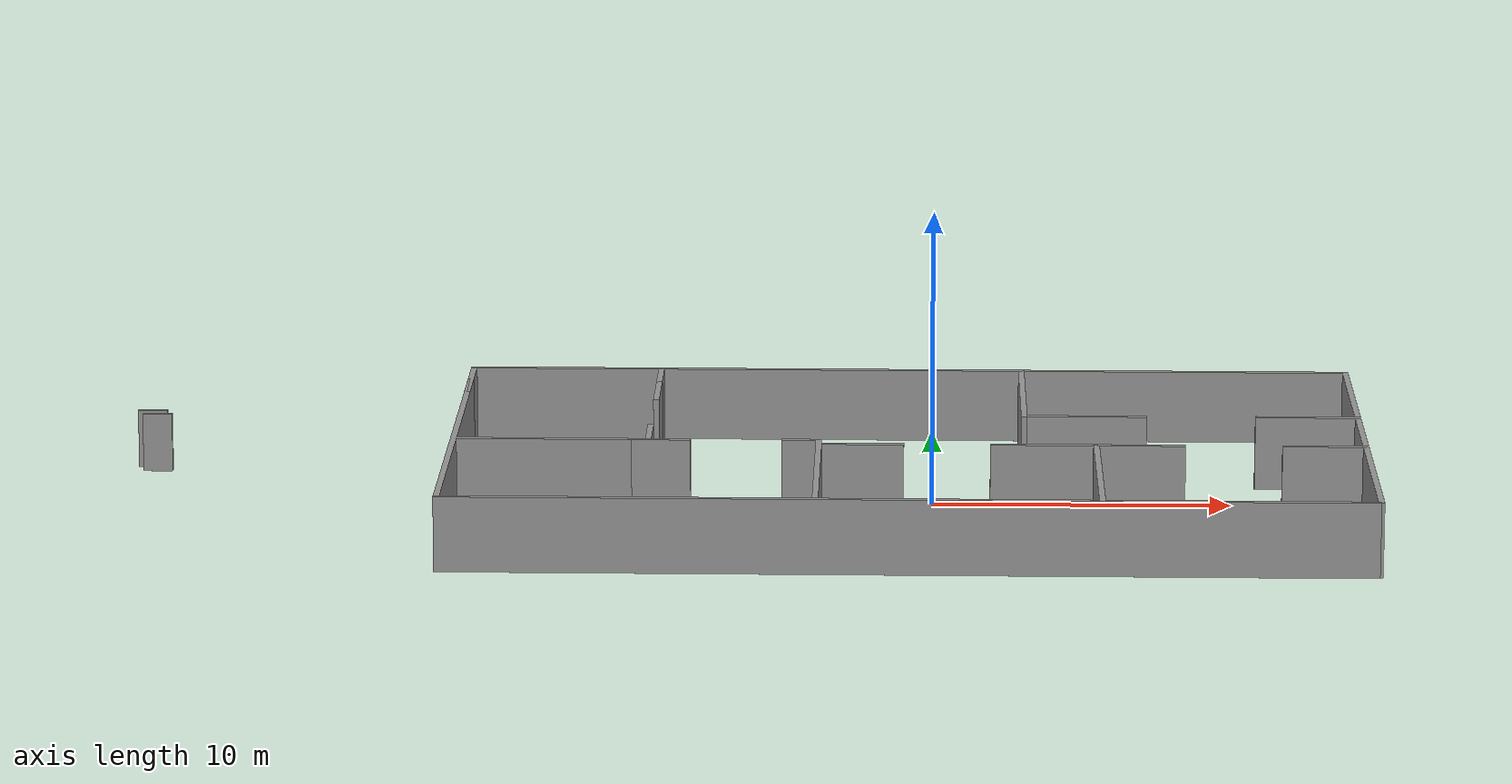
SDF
<?xml version='1.0'?>
<sdf version='1.4'>
  <model name='objectSearchBuilding'>
    <link name='Door_0'>
      <collision name='Door_0_Collision'>
        <geometry>
          <box>
            <size>1 0.2 2</size>
          </box>
        </geometry>
        <pose>0 0 1 0 -0 0</pose>
      </collision>
      <visual name='Door_0_Visual'>
        <pose>0 0 1 0 -0 0</pose>
        <geometry>
          <box>
            <size>1 0.2 2</size>
          </box>
        </geometry>
        <material>
          <script>
            <uri>file://media/materials/scripts/gazebo.material</uri>
            <name>Gazebo/Grey</name>
          </script>
        </material>
      </visual>
      <velocity_decay>
        <linear>0</linear>
        <angular>0</angular>
      </velocity_decay>
      <pose>-26.7171 4.37705 0 0 -0 0</pose>
    </link>
    <link name='Door_1'>
      <collision name='Door_1_Collision'>
        <geometry>
          <box>
            <size>1 0.2 2</size>
          </box>
        </geometry>
        <pose>0 0 1 0 -0 0</pose>
      </collision>
      <visual name='Door_1_Visual'>
        <pose>0 0 1 0 -0 0</pose>
        <geometry>
          <box>
            <size>1 0.2 2</size>
          </box>
        </geometry>
        <material>
          <script>
            <uri>file://media/materials/scripts/gazebo.material</uri>
            <name>Gazebo/Grey</name>
          </script>
        </material>
      </visual>
      <velocity_decay>
        <linear>0</linear>
        <angular>0</angular>
      </velocity_decay>
      <pose>-26.506 3.88454 0 0 -0 0</pose>
    </link>
    <link name='Wall_1'>
      <collision name='Wall_1_Collision'>
        <geometry>
          <box>
            <size>16.1369 0.2 2.5</size>
          </box>
        </geometry>
        <pose>0 0 1.25 0 -0 0</pose>
      </collision>
      <visual name='Wall_1_Visual'>
        <pose>0 0 1.25 0 -0 0</pose>
        <geometry>
          <box>
            <size>16.1369 0.2 2.5</size>
          </box>
        </geometry>
        <material>
          <script>
            <uri>file://media/materials/scripts/gazebo.material</uri>
            <name>Gazebo/Grey</name>
          </script>
        </material>
      </visual>
      <velocity_decay>
        <linear>0</linear>
        <angular>0</angular>
      </velocity_decay>
      <pose>-15.9816 -0.892347 0 0 0 -1.5708</pose>
    </link>
    <link name='Wall_13'>
      <collision name='Wall_13_Collision'>
        <geometry>
          <box>
            <size>2.10141 0.2 2.5</size>
          </box>
        </geometry>
        <pose>0 0 1.25 0 -0 0</pose>
      </collision>
      <visual name='Wall_13_Visual'>
        <pose>0 0 1.25 0 -0 0</pose>
        <geometry>
          <box>
            <size>2.10141 0.2 2.5</size>
          </box>
        </geometry>
        <material>
          <script>
            <uri>file://media/materials/scripts/gazebo.material</uri>
            <name>Gazebo/Grey</name>
          </script>
        </material>
      </visual>
      <velocity_decay>
        <linear>0</linear>
        <angular>0</angular>
      </velocity_decay>
      <pose>-9.48149 -0.238173 0 0 0 -1.5708</pose>
    </link>
    <link name='Wall_14'>
      <collision name='Wall_14_Collision'>
        <geometry>
          <box>
            <size>6.59198 0.2 2.5</size>
          </box>
        </geometry>
        <pose>0 0 1.25 0 -0 0</pose>
      </collision>
      <visual name='Wall_14_Visual'>
        <pose>0 0 1.25 0 -0 0</pose>
        <geometry>
          <box>
            <size>6.59198 0.2 2.5</size>
          </box>
        </geometry>
        <material>
          <script>
            <uri>file://media/materials/scripts/gazebo.material</uri>
            <name>Gazebo/Grey</name>
          </script>
        </material>
      </visual>
      <velocity_decay>
        <linear>0</linear>
        <angular>0</angular>
      </velocity_decay>
      <pose>-12.6775 -1.18888 0 0 -0 3.14159</pose>
    </link>
    <link name='Wall_2'>
      <collision name='Wall_2_Collision'>
        <geometry>
          <box>
            <size>30.4445 0.2 2.5</size>
          </box>
        </geometry>
        <pose>0 0 1.25 0 -0 0</pose>
      </collision>
      <visual name='Wall_2_Visual'>
        <pose>0 0 1.25 0 -0 0</pose>
        <geometry>
          <box>
            <size>30.4445 0.2 2.5</size>
          </box>
        </geometry>
        <material>
          <script>
            <uri>file://media/materials/scripts/gazebo.material</uri>
            <name>Gazebo/Grey</name>
          </script>
        </material>
      </visual>
      <velocity_decay>
        <linear>0</linear>
        <angular>0</angular>
      </velocity_decay>
      <pose>-0.859603 -8.86031 0 0 -0 3.3e-05</pose>
    </link>
    <link name='Wall_22'>
      <collision name='Wall_22_Collision'>
        <geometry>
          <box>
            <size>1.97014 0.2 2.5</size>
          </box>
        </geometry>
        <pose>0 0 1.25 0 -0 0</pose>
      </collision>
      <visual name='Wall_22_Visual'>
        <pose>0 0 1.25 0 -0 0</pose>
        <geometry>
          <box>
            <size>1.97014 0.2 2.5</size>
          </box>
        </geometry>
        <material>
          <script>
            <uri>file://media/materials/scripts/gazebo.material</uri>
            <name>Gazebo/Grey</name>
          </script>
        </material>
      </visual>
      <velocity_decay>
        <linear>0</linear>
        <angular>0</angular>
      </velocity_decay>
      <pose>-9.05251 -1.19759 0 0 -0 0</pose>
    </link>
    <link name='Wall_24'>
      <collision name='Wall_24_Collision'>
        <geometry>
          <box>
            <size>1.33184 0.2 2.5</size>
          </box>
        </geometry>
        <pose>0 0 1.25 0 -0 0</pose>
      </collision>
      <visual name='Wall_24_Visual'>
        <pose>0 0 1.25 0 -0 0</pose>
        <geometry>
          <box>
            <size>1.33184 0.2 2.5</size>
          </box>
        </geometry>
        <material>
          <script>
            <uri>file://media/materials/scripts/gazebo.material</uri>
            <name>Gazebo/Grey</name>
          </script>
        </material>
      </visual>
      <velocity_decay>
        <linear>0</linear>
        <angular>0</angular>
      </velocity_decay>
      <pose>-4.35895 -1.14656 0 0 -0 0</pose>
    </link>
    <link name='Wall_25'>
      <collision name='Wall_25_Collision'>
        <geometry>
          <box>
            <size>7.88323 0.2 2.5</size>
          </box>
        </geometry>
        <pose>0 0 1.25 0 -0 0</pose>
      </collision>
      <visual name='Wall_25_Visual'>
        <pose>0 0 1.25 0 -0 0</pose>
        <geometry>
          <box>
            <size>7.88323 0.2 2.5</size>
          </box>
        </geometry>
        <material>
          <script>
            <uri>file://media/materials/scripts/gazebo.material</uri>
            <name>Gazebo/Grey</name>
          </script>
        </material>
      </visual>
      <velocity_decay>
        <linear>0</linear>
        <angular>0</angular>
      </velocity_decay>
      <pose>-3.79304 -4.98807 0 0 0 -1.5708</pose>
    </link>
    <link name='Wall_29'>
      <collision name='Wall_29_Collision'>
        <geometry>
          <box>
            <size>2.7487 0.2 2.5</size>
          </box>
        </geometry>
        <pose>0 0 1.25 0 -0 0</pose>
      </collision>
      <visual name='Wall_29_Visual'>
        <pose>0 0 1.25 0 -0 0</pose>
        <geometry>
          <box>
            <size>2.7487 0.2 2.5</size>
          </box>
        </geometry>
        <material>
          <script>
            <uri>file://media/materials/scripts/gazebo.material</uri>
            <name>Gazebo/Grey</name>
          </script>
        </material>
      </visual>
      <velocity_decay>
        <linear>0</linear>
        <angular>0</angular>
      </velocity_decay>
      <pose>-2.33457 -1.65171 0 0 -0 0</pose>
    </link>
    <link name='Wall_32'>
      <collision name='Wall_32_Collision'>
        <geometry>
          <box>
            <size>6.47597 0.2 2.5</size>
          </box>
        </geometry>
        <pose>0 0 1.25 0 -0 0</pose>
      </collision>
      <visual name='Wall_32_Visual'>
        <pose>0 0 1.25 0 -0 0</pose>
        <geometry>
          <box>
            <size>6.47597 0.2 2.5</size>
          </box>
        </geometry>
        <material>
          <script>
            <uri>file://media/materials/scripts/gazebo.material</uri>
            <name>Gazebo/Grey</name>
          </script>
        </material>
      </visual>
      <velocity_decay>
        <linear>0</linear>
        <angular>0</angular>
      </velocity_decay>
      <pose>5.15239 -1.61125 0 0 -0 0</pose>
    </link>
    <link name='Wall_35'>
      <collision name='Wall_35_Collision'>
        <geometry>
          <box>
            <size>7.36064 0.2 2.5</size>
          </box>
        </geometry>
        <pose>0 0 1.25 0 -0 0</pose>
      </collision>
      <visual name='Wall_35_Visual'>
        <pose>0 0 1.25 0 -0 0</pose>
        <geometry>
          <box>
            <size>7.36064 0.2 2.5</size>
          </box>
        </geometry>
        <material>
          <script>
            <uri>file://media/materials/scripts/gazebo.material</uri>
            <name>Gazebo/Grey</name>
          </script>
        </material>
      </visual>
      <velocity_decay>
        <linear>0</linear>
        <angular>0</angular>
      </velocity_decay>
      <pose>5.43379 -5.24322 0 0 0 -1.5708</pose>
    </link>
    <link name='Wall_38'>
      <collision name='Wall_38_Collision'>
        <geometry>
          <box>
            <size>2.78916 0.2 2.5</size>
          </box>
        </geometry>
        <pose>0 0 1.25 0 -0 0</pose>
      </collision>
      <visual name='Wall_38_Visual'>
        <pose>0 0 1.25 0 -0 0</pose>
        <geometry>
          <box>
            <size>2.78916 0.2 2.5</size>
          </box>
        </geometry>
        <material>
          <script>
            <uri>file://media/materials/scripts/gazebo.material</uri>
            <name>Gazebo/Grey</name>
          </script>
        </material>
      </visual>
      <velocity_decay>
        <linear>0</linear>
        <angular>0</angular>
      </velocity_decay>
      <pose>12.999 -1.58199 0 0 -0 0</pose>
    </link>
    <link name='Wall_44'>
      <collision name='Wall_44_Collision'>
        <geometry>
          <box>
            <size>17.8335 0.2 2.5</size>
          </box>
        </geometry>
        <pose>0 0 1.25 0 -0 0</pose>
      </collision>
      <visual name='Wall_44_Visual'>
        <pose>0 0 1.25 0 -0 0</pose>
        <geometry>
          <box>
            <size>17.8335 0.2 2.5</size>
          </box>
        </geometry>
        <material>
          <script>
            <uri>file://media/materials/scripts/gazebo.material</uri>
            <name>Gazebo/Grey</name>
          </script>
        </material>
      </visual>
      <velocity_decay>
        <linear>0</linear>
        <angular>0</angular>
      </velocity_decay>
      <pose>14.3673 0.062687 0 0 -0 1.5708</pose>
    </link>
    <link name='Wall_45'>
      <collision name='Wall_45_Collision'>
        <geometry>
          <box>
            <size>30.5545 0.2 2.5</size>
          </box>
        </geometry>
        <pose>0 0 1.25 0 -0 0</pose>
      </collision>
      <visual name='Wall_45_Visual'>
        <pose>0 0 1.25 0 -0 0</pose>
        <geometry>
          <box>
            <size>30.5545 0.2 2.5</size>
          </box>
        </geometry>
        <material>
          <script>
            <uri>file://media/materials/scripts/gazebo.material</uri>
            <name>Gazebo/Grey</name>
          </script>
        </material>
      </visual>
      <velocity_decay>
        <linear>0</linear>
        <angular>0</angular>
      </velocity_decay>
      <pose>-0.809959 8.87943 0 0 -0 3.14159</pose>
    </link>
    <link name='Wall_46'>
      <collision name='Wall_46_Collision'>
        <geometry>
          <box>
            <size>3.71123 0.2 2.5</size>
          </box>
        </geometry>
        <pose>0 0 1.25 0 -0 0</pose>
      </collision>
      <visual name='Wall_46_Visual'>
        <pose>0 0 1.25 0 -0 0</pose>
        <geometry>
          <box>
            <size>3.71123 0.2 2.5</size>
          </box>
        </geometry>
        <material>
          <script>
            <uri>file://media/materials/scripts/gazebo.material</uri>
            <name>Gazebo/Grey</name>
          </script>
        </material>
      </visual>
      <velocity_decay>
        <linear>0</linear>
        <angular>0</angular>
      </velocity_decay>
      <pose>-15.9872 7.12382 0 0 0 -1.5708</pose>
    </link>
    <link name='Wall_50'>
      <collision name='Wall_50_Collision'>
        <geometry>
          <box>
            <size>2.12661 0.2 2.5</size>
          </box>
        </geometry>
        <pose>0 0 1.25 0 -0 0</pose>
      </collision>
      <visual name='Wall_50_Visual'>
        <pose>0 0 1.25 0 -0 0</pose>
        <geometry>
          <box>
            <size>2.12661 0.2 2.5</size>
          </box>
        </geometry>
        <material>
          <script>
            <uri>file://media/materials/scripts/gazebo.material</uri>
            <name>Gazebo/Grey</name>
          </script>
        </material>
      </visual>
      <velocity_decay>
        <linear>0</linear>
        <angular>0</angular>
      </velocity_decay>
      <pose>-9.44166 7.89235 0 0 -0 1.5708</pose>
    </link>
    <link name='Wall_53'>
      <collision name='Wall_53_Collision'>
        <geometry>
          <box>
            <size>6.686 0.2 2.5</size>
          </box>
        </geometry>
        <pose>0 0 1.25 0 -0 0</pose>
      </collision>
      <visual name='Wall_53_Visual'>
        <pose>0 0 1.25 0 -0 0</pose>
        <geometry>
          <box>
            <size>6.686 0.2 2.5</size>
          </box>
        </geometry>
        <material>
          <script>
            <uri>file://media/materials/scripts/gazebo.material</uri>
            <name>Gazebo/Grey</name>
          </script>
        </material>
      </visual>
      <velocity_decay>
        <linear>0</linear>
        <angular>0</angular>
      </velocity_decay>
      <pose>3.09939 5.59447 0 0 0 -1.5708</pose>
    </link>
    <link name='Wall_54'>
      <collision name='Wall_54_Collision'>
        <geometry>
          <box>
            <size>4.248 0.2 2.5</size>
          </box>
        </geometry>
        <pose>0 0 1.25 0 -0 0</pose>
      </collision>
      <visual name='Wall_54_Visual'>
        <pose>0 0 1.25 0 -0 0</pose>
        <geometry>
          <box>
            <size>4.248 0.2 2.5</size>
          </box>
        </geometry>
        <material>
          <script>
            <uri>file://media/materials/scripts/gazebo.material</uri>
            <name>Gazebo/Grey</name>
          </script>
        </material>
      </visual>
      <velocity_decay>
        <linear>0</linear>
        <angular>0</angular>
      </velocity_decay>
      <pose>5.12339 2.35147 0 0 -0 0</pose>
    </link>
    <link name='Wall_56'>
      <collision name='Wall_56_Collision'>
        <geometry>
          <box>
            <size>3.558 0.2 2.5</size>
          </box>
        </geometry>
        <pose>0 0 1.25 0 -0 0</pose>
      </collision>
      <visual name='Wall_56_Visual'>
        <pose>0 0 1.25 0 -0 0</pose>
        <geometry>
          <box>
            <size>3.558 0.2 2.5</size>
          </box>
        </geometry>
        <material>
          <script>
            <uri>file://media/materials/scripts/gazebo.material</uri>
            <name>Gazebo/Grey</name>
          </script>
        </material>
      </visual>
      <velocity_decay>
        <linear>0</linear>
        <angular>0</angular>
      </velocity_decay>
      <pose>12.6904 2.39747 0 0 -0 0</pose>
    </link>
    <link name='Wall_9'>
      <collision name='Wall_9_Collision'>
        <geometry>
          <box>
            <size>2.73287 0.2 2.5</size>
          </box>
        </geometry>
        <pose>0 0 1.25 0 -0 0</pose>
      </collision>
      <visual name='Wall_9_Visual'>
        <pose>0 0 1.25 0 -0 0</pose>
        <geometry>
          <box>
            <size>2.73287 0.2 2.5</size>
          </box>
        </geometry>
        <material>
          <script>
            <uri>file://media/materials/scripts/gazebo.material</uri>
            <name>Gazebo/Grey</name>
          </script>
        </material>
      </visual>
      <velocity_decay>
        <linear>0</linear>
        <angular>0</angular>
      </velocity_decay>
      <pose>-9.44082 5.64876 0 0 0 -1.5708</pose>
    </link>
    <static>1</static>
  </model>
</sdf>
